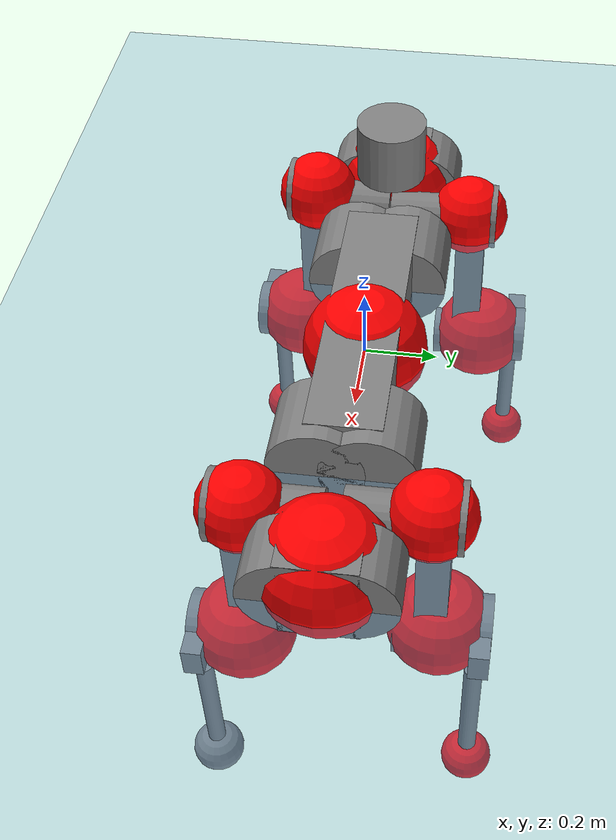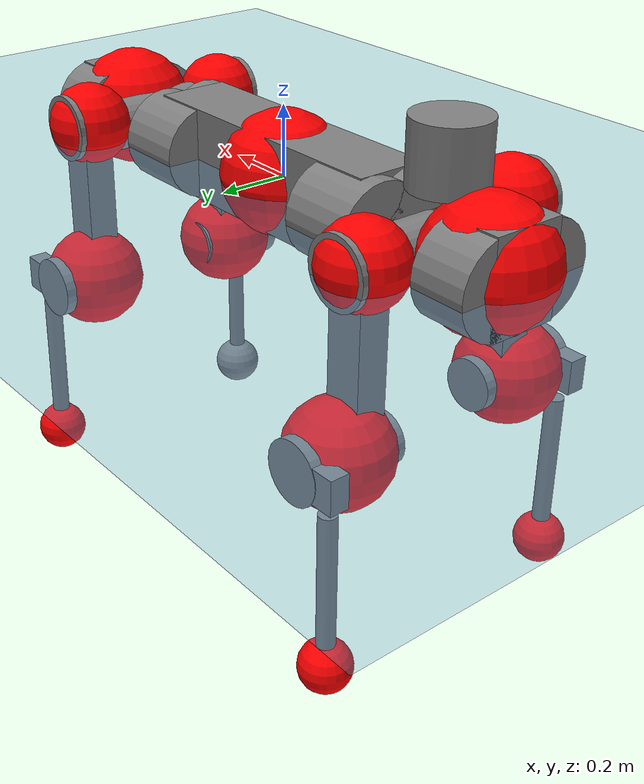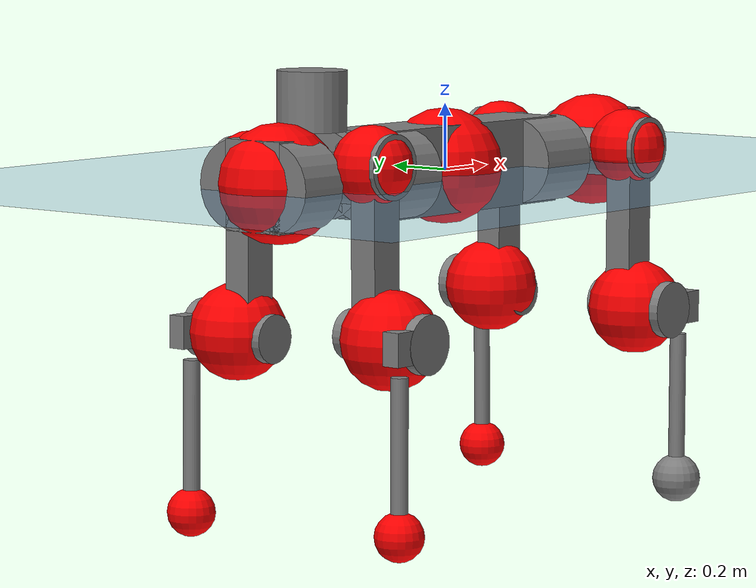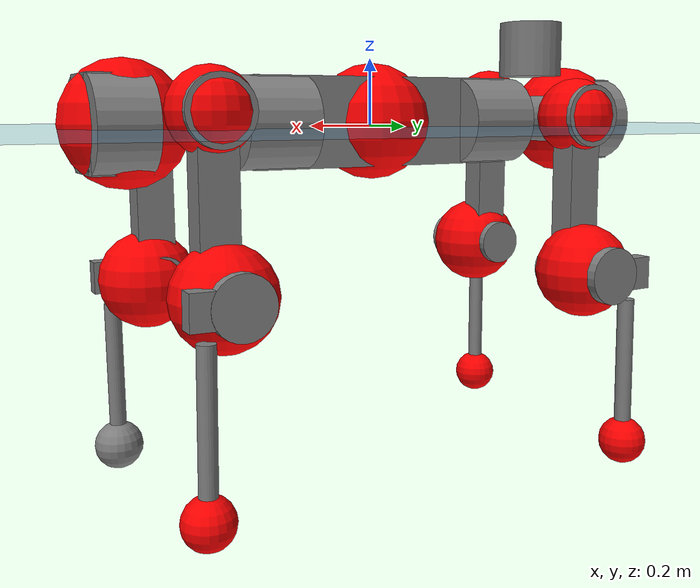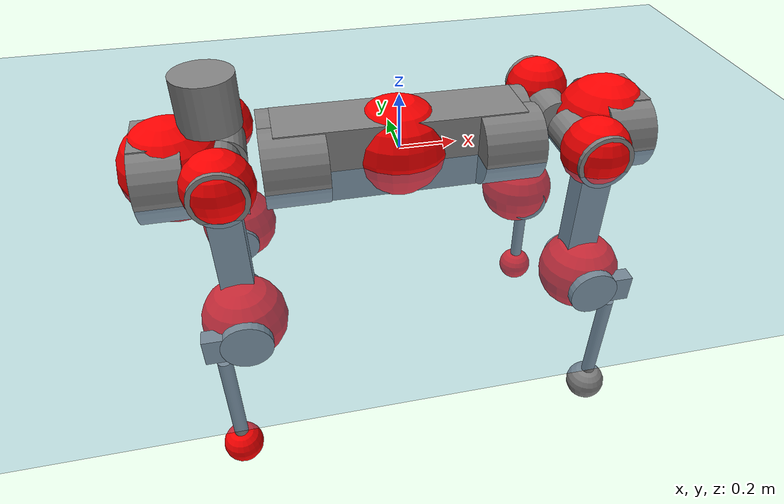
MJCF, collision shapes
<mujoco model="anymal_c">
  <compiler angle="radian" assetdir="assets" balanceinertia="true" inertiafromgeom="false"/>

  <option timestep="0.005" density="1.2" viscosity="2e-05"/>

  <size nkey="1"/>

  <visual>
    <quality shadowsize="8192"/>
    <map shadowclip="0.5"/>
  </visual>

  <default>
    <default class="/">
      <material specular="0" shininess="0.25"/>
      <geom contype="0" conaffinity="0" group="1" solref="-1000 -80"/>
      <site size="0.01 0.005 0.005" group="5"/>
      <general forcelimited="true" forcerange="-80 80" biastype="affine" gainprm="80" biasprm="0 -80 -2"/>
      <default class="anymal_c">
        <joint armature="0.01" damping="0.01" frictionloss="0.1"/>
        <default class="visual">
          <geom type="mesh" group="2"/>
          <default class="visual_zflip"/>
        </default>
        <default class="collision">
          <geom type="cylinder" group="3"/>
          <default class="foot">
            <geom size="0.03 0 0" type="sphere" condim="6" priority="1" friction="0.8 0.02 0.01" solimp="0.015 1 0.03"/>
          </default>
        </default>
      </default>
      <default class="reward_collision_sphere">
        <geom group="5" rgba="1 0 0 1"/>
      </default>
    </default>
  </default>

  <asset>
    <texture type="skybox" colorspace="auto" name="//unnamed_texture_0" builtin="gradient" rgb1="0.95 0.95 0.95" rgb2="0.95 0.95 0.95" width="100" height="600"/>
    <texture type="2d" colorspace="auto" name="texplane" builtin="checker" rgb1="0.345 0.575 0.748" rgb2="0.345 0.575 0.748" markrgb="1 1 1" width="512" height="512"/>
    <texture type="2d" colorspace="linear" name="base" file="base.png"/>
    <texture type="2d" colorspace="linear" name="top_shell" file="top_shell.png"/>
    <texture type="2d" colorspace="linear" name="bottom_shell" file="bottom_shell.png"/>
    <texture type="2d" colorspace="linear" name="remote" file="remote.png"/>
    <texture type="2d" colorspace="linear" name="hatch" file="hatch.png"/>
    <texture type="2d" colorspace="linear" name="handle" file="handle.png"/>
    <texture type="2d" colorspace="linear" name="face" file="face.png"/>
    <texture type="2d" colorspace="linear" name="battery" file="battery.png"/>
    <texture type="2d" colorspace="linear" name="lidar_cage" file="lidar_cage.png"/>
    <texture type="2d" colorspace="linear" name="depth_camera" file="depth_camera.png"/>
    <texture type="2d" colorspace="linear" name="wide_angle_camera" file="wide_angle_camera.png"/>
    <texture type="2d" colorspace="linear" name="lidar" file="lidar.png"/>
    <texture type="2d" colorspace="linear" name="drive" file="drive.png"/>
    <texture type="2d" colorspace="linear" name="hip_l" file="hip_l.png"/>
    <texture type="2d" colorspace="linear" name="shank_l" file="shank_l.png"/>
    <texture type="2d" colorspace="linear" name="foot" file="foot.png"/>
    <texture type="2d" colorspace="linear" name="thigh" file="thigh.png"/>
    <texture type="2d" colorspace="linear" name="shank_r" file="shank_r.png"/>
    <texture type="2d" colorspace="linear" name="hip_r" file="hip_r.png"/>
    <material name="MatPlane" class="/" texture="texplane" texuniform="true" texrepeat="2 2" specular="0.9" shininess="0.5"/>
    <material name="black_plastic" class="/" rgba="0.007 0.007 0.007 1"/>
    <material name="green" class="/" rgba="0.052 0.178 0.033 1"/>
    <material name="red" class="/" rgba="0.178 0.006 0.005 1"/>
    <material name="yellow" class="/" rgba="0.178 0.119 0.006 1"/>
    <material name="lwl" class="/" rgba="0.8 0.8 0.8 1"/>
    <material name="base" class="/" texture="base"/>
    <material name="top_shell" class="/" texture="top_shell"/>
    <material name="bottom_shell" class="/" texture="bottom_shell"/>
    <material name="hip_l" class="/" texture="hip_l"/>
    <material name="thigh" class="/" texture="thigh"/>
    <material name="shank_l" class="/" texture="shank_l"/>
    <material name="foot" class="/" texture="foot"/>
    <material name="hip_r" class="/" texture="hip_r"/>
    <material name="shank" class="/" texture="shank_r"/>
    <material name="hatch" class="/" texture="hatch"/>
    <material name="remote" class="/" texture="remote"/>
    <material name="handle" class="/" texture="handle"/>
    <material name="face" class="/" texture="face"/>
    <material name="depth_camera" class="/" texture="depth_camera"/>
    <material name="wide_angle_camera" class="/" texture="wide_angle_camera"/>
    <material name="battery" class="/" texture="battery"/>
    <material name="lidar_cage" class="/" texture="lidar_cage"/>
    <material name="lidar" class="/" texture="lidar"/>
    <material name="drive" class="/" texture="drive"/>
    <mesh name="base_0" class="/" file="base_0.obj"/>
    <mesh name="base_1" class="/" file="base_1.obj"/>
    <mesh name="base_2" class="/" file="base_2.obj"/>
    <mesh name="base_3" class="/" file="base_3.obj"/>
    <mesh name="base_4" class="/" file="base_4.obj"/>
    <mesh name="base_5" class="/" file="base_5.obj"/>
    <mesh name="top_shell" class="/" file="top_shell.obj"/>
    <mesh name="bottom_shell" class="/" file="bottom_shell.obj"/>
    <mesh name="remote" class="/" file="remote.obj"/>
    <mesh name="handle" class="/" file="handle.obj"/>
    <mesh name="face" class="/" file="face.obj"/>
    <mesh name="wide_angle_camera" class="/" file="wide_angle_camera.obj"/>
    <mesh name="depth_camera" class="/" file="depth_camera.obj"/>
    <mesh name="battery" class="/" file="battery.obj"/>
    <mesh name="lidar_cage" class="/" file="lidar_cage.obj"/>
    <mesh name="lidar" class="/" file="lidar.obj"/>
    <mesh name="drive" class="/" file="drive.obj"/>
    <mesh name="hip_l" class="/" file="hip_l.obj"/>
    <mesh name="thigh" class="/" file="thigh.obj"/>
    <mesh name="shank_l" class="/" file="shank_l.obj"/>
    <mesh name="foot" class="/" file="foot.obj"/>
    <mesh name="hip_r" class="/" file="hip_r.obj"/>
    <mesh name="hatch" class="/" file="hatch.obj"/>
    <mesh name="shank_r" class="/" file="shank_r.obj"/>
  </asset>

  <worldbody>
    <geom name="floor" class="/" size="100 100 0.125" type="plane" group="0" material="MatPlane"/>
    <light name="toplight_shadow" class="/" pos="0 0 5" dir="0.0990148 0.0990148 -0.990148" type="directional" ambient="0.04 0.04 0.04" diffuse="0.55 0.55 0.55" specular="0.12 0.12 0.12"/>
    <light name="toplight_fill" class="/" pos="0 0 5" dir="0.0990148 0.0990148 -0.990148" type="directional" castshadow="false" ambient="0.04 0.04 0.04" diffuse="0.3 0.3 0.3" specular="0.08 0.08 0.08"/>
    <body name="trunk" childclass="anymal_c" pos="-0.00444887 0.00102239 0.0129418" quat="0.999997 0.00135105 0.002027 -0.000119987">
      <inertial pos="0.0182296 0.0157057 0.0767952" quat="0.470258 0.529015 0.506934 0.491955" mass="58.1962" diaginertia="5.81291 0.447935 2.7961"/>
      <joint name="//unnamed_joint_0" type="free" armature="0" damping="0" frictionloss="0"/>
      <geom name="//unnamed_geom_1" class="visual" material="green" mesh="base_0"/>
      <geom name="//unnamed_geom_2" class="visual" material="yellow" mesh="base_1"/>
      <geom name="//unnamed_geom_3" class="visual" material="red" mesh="base_2"/>
      <geom name="//unnamed_geom_4" class="visual" material="black_plastic" mesh="base_3"/>
      <geom name="//unnamed_geom_5" class="visual" material="lwl" mesh="base_4"/>
      <geom name="//unnamed_geom_6" class="visual" material="base" mesh="base_5"/>
      <geom name="trunk_1" class="collision" size="0.422337 0.101943 0.13107" type="box"/>
      <geom name="trunk_2" class="collision" size="0.13107 0.105584" pos="0.362984 0.0684687 0" quat="0.707107 0 0.707107 0"/>
      <geom name="trunk_3" class="collision" size="0.13107 0.105584" pos="-0.362984 0.0684687 0" quat="0.707107 0 0.707107 0"/>
      <geom name="trunk_4" class="collision" size="0.13107 0.105584" pos="0.362984 -0.0684687 0" quat="0.707107 0 0.707107 0"/>
      <geom name="trunk_5" class="collision" size="0.13107 0.105584" pos="-0.362984 -0.0684687 0" quat="0.707107 0 0.707107 0"/>
      <geom name="//unnamed_geom_12" class="visual" material="top_shell" mesh="top_shell"/>
      <geom name="//unnamed_geom_13" class="visual" material="bottom_shell" mesh="bottom_shell"/>
      <geom name="//unnamed_geom_14" class="visual" material="remote" mesh="remote"/>
      <geom name="//unnamed_geom_15" class="visual" material="handle" mesh="handle"/>
      <geom name="//unnamed_geom_16" class="visual" pos="0.691755 0 0" quat="1 0 0 0" material="face" mesh="face"/>
      <geom name="trunk_6" class="collision" size="0.0800984 0.101943 0.13107" pos="0.783544 0 0" type="box"/>
      <geom name="//unnamed_geom_18" class="collision" size="0.13107 0.0800984" pos="0.783544 0.0684687 0" quat="0.707107 0 0.707107 0"/>
      <geom name="//unnamed_geom_19" class="collision" size="0.13107 0.0800984" pos="0.783544 -0.0684687 0" quat="0.707107 0 0.707107 0"/>
      <geom name="//unnamed_geom_20" class="visual" pos="0.770445 0 -0.0506857" quat="0.965926 0 0.258819 0" material="depth_camera" mesh="depth_camera"/>
      <geom name="//unnamed_geom_21" class="visual" pos="0.856141 0 0.0257782" material="wide_angle_camera" mesh="wide_angle_camera"/>
      <geom name="//unnamed_geom_22" class="visual_zflip" pos="-0.691755 0 0" quat="0 0 0 1" material="face" mesh="face"/>
      <geom name="trunk_7" class="collision" size="0.0800984 0.101943 0.13107" pos="-0.783544 0 0" quat="0 0 0 1" type="box"/>
      <geom name="//unnamed_geom_24" class="collision" size="0.13107 0.0800984" pos="-0.783544 -0.0684687 0" quat="0 -0.707107 0 0.707107"/>
      <geom name="//unnamed_geom_25" class="collision" size="0.13107 0.0800984" pos="-0.783544 0.0684687 0" quat="0 -0.707107 0 0.707107"/>
      <geom name="//unnamed_geom_26" class="visual" pos="-0.770445 0 -0.0506857" quat="0 -0.258819 0 0.965926" material="depth_camera" mesh="depth_camera"/>
      <geom name="//unnamed_geom_27" class="visual_zflip" pos="-0.856141 0 0.0257782" quat="0 0 0 1" material="wide_angle_camera" mesh="wide_angle_camera"/>
      <geom name="//unnamed_geom_28" class="visual" material="battery" mesh="battery"/>
      <geom name="//unnamed_geom_29" class="visual" pos="0 0.0657253 0.0496203" quat="0.683013 -0.183013 0.183013 0.683013" material="depth_camera" mesh="depth_camera"/>
      <geom name="//unnamed_geom_30" class="visual" pos="0 -0.0657253 0.0496203" quat="0.683013 0.183013 0.183013 -0.683013" material="depth_camera" mesh="depth_camera"/>
      <geom name="//unnamed_geom_31" class="visual" pos="-0.607476 0 0.126566" quat="1 0 0 0" material="lidar_cage" mesh="lidar_cage"/>
      <geom name="trunk_8" class="collision" size="0.101943 0.0873801" pos="-0.607476 0 0.229886"/>
      <geom name="//unnamed_geom_33" class="visual" pos="-0.607476 -0.000271383 0.244867" quat="0.707107 0 0 -0.707107" material="lidar" mesh="lidar"/>
      <geom name="//unnamed_geom_34" class="visual" pos="0.5005 0.101989 -1.28318e-08" quat="0.258819 0.965926 0 0" material="drive" mesh="drive"/>
      <geom name="//unnamed_geom_35" class="visual" pos="0.5005 -0.101989 1.28318e-08" quat="0.258819 -0.965926 0 0" material="drive" mesh="drive"/>
      <geom name="//unnamed_geom_36" class="visual" pos="-0.5005 0.101989 1.28318e-08" quat="0 0 0.965926 -0.258819" material="drive" mesh="drive"/>
      <geom name="//unnamed_geom_37" class="visual" pos="-0.5005 -0.101989 -1.28318e-08" quat="0 0 -0.965926 -0.258819" material="drive" mesh="drive"/>
      <geom name="//unnamed_geom_38" class="visual" pos="0.193591 0 0.125705" quat="1 0 0 0" material="hatch" mesh="hatch"/>
      <geom name="//unnamed_geom_39" class="reward_collision_sphere" size="0.17476"/>
      <geom name="//unnamed_geom_40" class="reward_collision_sphere" size="0.17476" pos="0.751001 0 0"/>
      <geom name="//unnamed_geom_41" class="reward_collision_sphere" size="0.17476" pos="-0.751001 0 0"/>
      <site name="imu" pos="0.504234 0.0351087 0.0016202" size="0.0145633"/>
      <camera name="track" pos="0 -1.95625 0" quat="0.707107 0.707107 0 0" mode="trackcom"/>
      <camera name="ego_camera" pos="0.751001 0 -0.0688796" quat="-0.5 -0.5 0.5 0.5"/>
      <body name="LF_HIP" pos="0.495156 0.110648 0.0028011" quat="0.257555 0.966251 -0.00061628 0.00498072">
        <inertial pos="0.0787091 -0.00445033 -0.0104177" quat="-0.083987 0.713859 -0.172992 0.673369" mass="10.7503" diaginertia="0.0952987 0.00471576 0.0465041"/>
        <joint name="LF_HAA" pos="0 0 0" axis="0.997656 -0.0489131 0.0478603" stiffness="0.038957" range="-0.639601 0.265563" armature="0.00215953" damping="0.0869952" frictionloss="0.190222"/>
        <geom name="//unnamed_geom_42" class="visual" pos="0 -0.000754835 0.000123981" quat="0.258819 -0.965926 0 0" material="hip_l" mesh="hip_l"/>
        <geom name="//unnamed_geom_43" class="visual" pos="0.0999665 -0.1123 -0.0703385" quat="0.183013 -0.683013 0.683013 0.183013" material="drive" mesh="drive"/>
        <geom name="//unnamed_geom_44" class="collision" size="0.0728167 0.101943" pos="0.0999665 -0.0116982 -0.0118903" quat="-0.353553 -0.612372 0.612372 -0.353553"/>
        <body name="LF_THIGH" pos="0.0999798 -0.0668022 -0.0717658" quat="0.183024 -0.683473 0.683086 0.181">
          <inertial pos="0.0419265 -0.000718782 -0.439229" quat="0.990755 -0.0354335 -0.103255 0.0805402" mass="7.67773" diaginertia="0.447684 0.0256589 0.0647808"/>
          <joint name="LF_HFE" pos="0 0 0" axis="0.996173 -0.0846279 0.021845" range="-2.99579 3.01579" armature="0.0105708" damping="0.0453207" frictionloss="0.259329"/>
          <geom name="//unnamed_geom_45" class="visual" pos="0.0137435 2.16566e-05 0" quat="0.707107 0 0 -0.707107" material="thigh" mesh="thigh"/>
          <geom name="//unnamed_geom_46" class="collision" size="0.0946618 0.0582534" pos="0.0667556 0 0" quat="0.5 0.5 -0.5 -0.5"/>
          <geom name="//unnamed_geom_47" class="collision" size="0.0546126 0.04369 0.205801" pos="0.0500667 0 -0.243341" quat="0.707107 0 0 -0.707107" type="box"/>
          <geom name="//unnamed_geom_48" class="visual" pos="0.16739 0 -0.490767" quat="1 0 0 0" material="drive" mesh="drive"/>
          <geom name="//unnamed_geom_49" class="collision" size="0.0728167 0.101943" pos="0.0505674 0 -0.490767" quat="0.707107 0 0.707107 0"/>
          <geom name="//unnamed_geom_50" class="reward_collision_sphere" size="0.116507" pos="0.0417223 0 0"/>
          <body name="LF_SHANK" pos="0.152909 0.0148762 -0.472978" quat="0.999974 -0.00627594 -0.0023424 0.0027254">
            <inertial pos="0.016119 -0.0598438 -0.131709" quat="0.996519 -0.0827077 0.000110818 -0.0104729" mass="2.15587" diaginertia="0.149875 0.0082015 0.0209094"/>
            <joint name="LF_KFE" pos="0 0 0" axis="0.998968 -0.0447297 0.00790628" stiffness="0.0143755" range="-2.88974 2.95705" armature="0.00727281" damping="0.0791" frictionloss="0.0572616"/>
            <geom name="//unnamed_geom_51" class="visual" pos="0.00448146 0.0238954 0" quat="0.707107 0 0 -0.707107" material="shank_l" mesh="shank_l"/>
            <geom name="LF_kfe_act" class="collision" size="0.0873801 0.0291267" pos="0.0333778 0 0" quat="0.5 0.5 -0.5 -0.5"/>
            <geom name="//unnamed_geom_53" class="collision" size="0.0837378 0.0491513 0.0276704" pos="0.0333778 -0.0562412 0" quat="0.5 0.5 -0.5 -0.5" type="box"/>
            <geom name="//unnamed_geom_54" class="visual" pos="0.0217779 -0.0783255 -0.581981" quat="0.382683 0 0 -0.92388" material="foot" mesh="foot"/>
            <geom name="LF_calf" class="collision" size="0.0254859 0.20571" pos="0.021779 -0.086026 -0.290991" quat="0.707107 0 0 -0.707107"/>
            <geom name="LF_foot" class="foot" size="0.0535591" pos="0.021779 -0.086026 -0.543236" quat="0.707107 0 0 -0.707107"/>
            <geom name="//unnamed_geom_57" class="reward_collision_sphere" size="0.145633" pos="-0.0834445 0 0"/>
            <geom name="//unnamed_geom_58" class="reward_collision_sphere" size="0.0728167" pos="0.021779 -0.086026 -0.543236"/>
            <site name="LF_foot" class="foot" pos="0.021779 -0.086026 -0.543236" quat="0.707107 0 0 -0.707107" size="0.0145633"/>
          </body>
        </body>
      </body>
      <body name="RF_HIP" pos="0.512827 -0.106573 0.0043566" quat="0.258621 -0.965978 -0.000155982 0.0011648">
        <inertial pos="0.0792585 0.019752 -0.0184754" quat="0.135104 0.681632 0.138754 0.705601" mass="7.95578" diaginertia="0.0723751 0.00321153 0.0420188"/>
        <joint name="RF_HAA" pos="0 0 0" axis="0.999022 0.0421437 0.0133484" stiffness="0.0414495" range="-0.168797 0.605121" armature="0.0251687" damping="0.0188336" frictionloss="0.260283"/>
        <geom name="//unnamed_geom_59" class="visual" pos="0 0.000754829 0.000123981" quat="0.258819 0.965926 0 0" material="hip_r" mesh="hip_r"/>
        <geom name="//unnamed_geom_60" class="visual" pos="0.0999665 0.1123 -0.0703385" quat="0.183013 0.683013 0.683013 -0.183013" material="drive" mesh="drive"/>
        <geom name="//unnamed_geom_61" class="collision" size="0.0728167 0.101943" pos="0.0999665 0.0116982 -0.0118903" quat="-0.353553 0.612372 0.612372 0.353553"/>
        <body name="RF_THIGH" pos="0.109797 0.0544837 -0.0615822" quat="0.1804 0.684381 0.682203 -0.183515">
          <inertial pos="0.0503987 -0.00553522 -0.418723" quat="0.980723 -0.0110853 -0.13035 0.145149" mass="13.4546" diaginertia="0.433506 0.0266248 0.0649104"/>
          <joint name="RF_HFE" pos="0 0 0" axis="0.99753 -0.0330425 0.061984" stiffness="0.0130511" range="-3.49213 2.88948" armature="0.0139944" damping="0.0845046" frictionloss="0.00858116"/>
          <geom name="//unnamed_geom_62" class="visual" pos="0.0137435 2.16566e-05 0" quat="0.707107 0 0 -0.707107" material="thigh" mesh="thigh"/>
          <geom name="//unnamed_geom_63" class="collision" size="0.0946618 0.0582534" pos="0.0667556 0 0" quat="0.5 0.5 0.5 0.5"/>
          <geom name="//unnamed_geom_64" class="collision" size="0.0546126 0.04369 0.205801" pos="0.0500667 0 -0.243341" quat="0.707107 0 0 0.707107" type="box"/>
          <geom name="//unnamed_geom_65" class="visual" pos="0.16739 0 -0.490767" quat="1 0 0 0" material="drive" mesh="drive"/>
          <geom name="//unnamed_geom_66" class="collision" size="0.0728167 0.101943" pos="0.0505674 0 -0.490767" quat="0.707107 0 0.707107 0"/>
          <geom name="//unnamed_geom_67" class="reward_collision_sphere" size="0.116507" pos="0.0417223 0 0"/>
          <body name="RF_SHANK" pos="0.151785 0.016593 -0.500109" quat="0.999998 -0.00136918 -0.00134881 -0.000797699">
            <inertial pos="0.0108459 0.0635975 -0.15536" quat="0.993562 0.0869148 0.0227793 0.0690015" mass="1.96373" diaginertia="0.161883 0.00984916 0.0163143"/>
            <joint name="RF_KFE" pos="0 0 0" axis="0.99981 -0.00886433 -0.017383" range="-2.90708 2.89623" armature="0.0205379" damping="0" frictionloss="0.270693"/>
            <geom name="//unnamed_geom_68" class="visual" pos="0.00448144 -0.0238953 0" quat="0.707107 0 0 0.707107" material="shank" mesh="shank_r"/>
            <geom name="RF_kfe_act" class="collision" size="0.0873801 0.0291267" pos="0.0333778 0 0" quat="0.5 0.5 0.5 0.5"/>
            <geom name="//unnamed_geom_70" class="collision" size="0.0837378 0.0491513 0.0276704" pos="0.0333778 0.0562412 0" quat="0.5 0.5 0.5 0.5" type="box"/>
            <geom name="//unnamed_geom_71" class="visual" pos="0.0217801 0.0783255 -0.581981" quat="0.382683 0 0 0.92388" material="foot" mesh="foot"/>
            <geom name="RF_calf" class="collision" size="0.0254859 0.20571" pos="0.021779 0.086026 -0.290991" quat="0.707107 0 0 0.707107"/>
            <geom name="RF_foot" class="foot" size="0.0747152" pos="0.021779 0.086026 -0.543236" quat="0.707107 0 0 0.707107"/>
            <geom name="//unnamed_geom_74" class="reward_collision_sphere" size="0.145633" pos="-0.0834445 0 0"/>
            <geom name="//unnamed_geom_75" class="reward_collision_sphere" size="0.0728167" pos="0.021779 0.086026 -0.543236"/>
            <site name="RF_foot" class="foot" pos="0.021779 0.086026 -0.543236" quat="0.707107 0 0 0.707107" size="0.0145633"/>
          </body>
        </body>
      </body>
      <body name="LH_HIP" pos="-0.482974 0.0920079 0.000415401" quat="0.000467654 -0.00203447 0.966761 -0.255675">
        <inertial pos="0.0847374 -0.00116439 -0.0179569" quat="0.19347 0.668251 0.127492 0.706934" mass="8.46606" diaginertia="0.0998302 0.0041025 0.0707702"/>
        <joint name="LH_HAA" pos="0 0 0" axis="0.999055 0.0141387 -0.04111" stiffness="0.0429462" range="-0.66939 1.0963" armature="0.0269474" damping="0.0727311" frictionloss="0.170167"/>
        <geom name="//unnamed_geom_76" class="visual" pos="0 0.000754829 0.000123981" quat="-0.258819 -0.965926 0 0" material="hip_r" mesh="hip_r"/>
        <geom name="//unnamed_geom_77" class="visual" pos="0.0999665 0.1123 -0.0703385" quat="0.183013 0.683013 0.683013 -0.183013" material="drive" mesh="drive"/>
        <geom name="//unnamed_geom_78" class="collision" size="0.0728167 0.101943" pos="0.0999665 0.0116982 -0.0118903" quat="-0.353553 0.612372 0.612372 0.353553"/>
        <body name="LH_THIGH" pos="0.112225 0.0894955 -0.0649321" quat="0.183015 0.683022 0.683025 -0.182933">
          <inertial pos="0.0516667 -0.0144608 -0.417383" quat="0.99473 0.00119149 -0.0757088 0.0691274" mass="9.60436" diaginertia="0.394441 0.0307479 0.0571128"/>
          <joint name="LH_HFE" pos="0 0 0" axis="0.997238 0.0742449 0.00199681" range="-3.18644 3.2342" armature="0.022295" damping="0.0591685" frictionloss="0.0824528"/>
          <geom name="//unnamed_geom_79" class="visual" pos="0.0137435 2.16566e-05 0" quat="0.707107 0 0 -0.707107" material="thigh" mesh="thigh"/>
          <geom name="//unnamed_geom_80" class="collision" size="0.0946618 0.0582534" pos="0.0667556 0 0" quat="0.5 0.5 -0.5 -0.5"/>
          <geom name="//unnamed_geom_81" class="collision" size="0.0546126 0.04369 0.205801" pos="0.0500667 0 -0.243341" quat="0.707107 0 0 -0.707107" type="box"/>
          <geom name="//unnamed_geom_82" class="visual" pos="0.16739 0 -0.490767" quat="1 0 0 0" material="drive" mesh="drive"/>
          <geom name="//unnamed_geom_83" class="collision" size="0.0728167 0.101943" pos="0.0505674 0 -0.490767" quat="0.707107 0 0.707107 0"/>
          <geom name="//unnamed_geom_84" class="reward_collision_sphere" size="0.116507" pos="0.0417223 0 0"/>
          <body name="LH_SHANK" pos="0.179779 -0.00332856 -0.481739" quat="0.999989 0.00359077 0.000801511 0.00284041">
            <inertial pos="0.00960974 0.060926 -0.135997" quat="0.984742 0.161797 -0.0521651 -0.0371976" mass="1.79359" diaginertia="0.122292 0.00757375 0.0202767"/>
            <joint name="LH_KFE" pos="0 0 0" axis="0.997678 0.0681008 -0.00109894" range="-3.12419 3.13495" armature="0.023968" damping="0.0315854" frictionloss="0.0551977"/>
            <geom name="//unnamed_geom_85" class="visual" pos="0.00448144 -0.0238953 0" quat="-0.707107 0 0 -0.707107" material="shank" mesh="shank_r"/>
            <geom name="LH_kfe_act" class="collision" size="0.0873801 0.0291267" pos="0.0333778 0 0" quat="0.5 0.5 -0.5 -0.5"/>
            <geom name="//unnamed_geom_87" class="collision" size="0.0837378 0.0491513 0.0276704" pos="0.0333778 0.0562412 0" quat="0.5 0.5 -0.5 -0.5" type="box"/>
            <geom name="//unnamed_geom_88" class="visual" pos="0.0217801 0.0783255 -0.581981" quat="-0.382683 0 0 -0.92388" material="foot" mesh="foot"/>
            <geom name="LH_calf" class="collision" size="0.0254859 0.20571" pos="0.021779 0.086026 -0.290991" quat="0.707107 0 0 -0.707107"/>
            <geom name="LH_foot" class="foot" size="0.0138442" pos="0.021779 0.086026 -0.543236" quat="0.707107 0 0 -0.707107"/>
            <geom name="//unnamed_geom_91" class="reward_collision_sphere" size="0.145633" pos="-0.0834445 0 0"/>
            <geom name="//unnamed_geom_92" class="reward_collision_sphere" size="0.0728167" pos="0.021779 0.086026 -0.543236"/>
            <site name="LH_foot" class="foot" pos="0.021779 0.086026 -0.543236" quat="0.707107 0 0 -0.707107" size="0.0145633"/>
          </body>
        </body>
      </body>
      <body name="RH_HIP" pos="-0.504114 -0.0855311 0.00994013" quat="-0.00568795 -0.00362478 -0.965426 -0.26059">
        <inertial pos="0.110955 -0.0124048 -0.0295495" quat="-0.123194 0.73213 -0.111827 0.660533" mass="9.60302" diaginertia="0.0838819 0.00504643 0.0685557"/>
        <joint name="RH_HAA" pos="0 0 0" axis="0.999921 0.0123151 -0.00238151" stiffness="0.0522978" range="-0.422078 0.139189" armature="0.0165217" damping="0.0677249" frictionloss="0.134585"/>
        <geom name="//unnamed_geom_93" class="visual" pos="0 -0.000754835 0.000123981" quat="-0.258819 0.965926 0 0" material="hip_l" mesh="hip_l"/>
        <geom name="//unnamed_geom_94" class="visual" pos="0.0999665 -0.1123 -0.0703385" quat="-0.183013 0.683013 -0.683013 -0.183013" material="drive" mesh="drive"/>
        <geom name="//unnamed_geom_95" class="collision" size="0.0728167 0.101943" pos="0.0999665 -0.0116982 -0.0118903" quat="0.353553 0.612372 -0.612372 0.353553"/>
        <body name="RH_THIGH" pos="0.0961428 -0.060625 -0.0884995" quat="-0.184959 0.683098 -0.68226 -0.183543">
          <inertial pos="0.0382851 0.00680121 -0.429181" quat="0.992881 -0.0087681 -0.0835431 0.0844498" mass="14.1917" diaginertia="0.572581 0.0315928 0.0713754"/>
          <joint name="RH_HFE" pos="0 0 0" axis="0.99734 0.0724838 -0.00771644" stiffness="0.00520552" range="-3.21527 3.12106" armature="0.0213691" damping="0.0555759" frictionloss="0.133124"/>
          <geom name="//unnamed_geom_96" class="visual" pos="0.0137435 2.16566e-05 0" quat="0.707107 0 0 -0.707107" material="thigh" mesh="thigh"/>
          <geom name="//unnamed_geom_97" class="collision" size="0.0946618 0.0582534" pos="0.0667556 0 0" quat="0.5 0.5 0.5 0.5"/>
          <geom name="//unnamed_geom_98" class="collision" size="0.0546126 0.04369 0.205801" pos="0.0500667 0 -0.243341" quat="0.707107 0 0 0.707107" type="box"/>
          <geom name="//unnamed_geom_99" class="visual" pos="0.16739 0 -0.490767" quat="1 0 0 0" material="drive" mesh="drive"/>
          <geom name="//unnamed_geom_100" class="collision" size="0.0728167 0.101943" pos="0.0505674 0 -0.490767" quat="0.707107 0 0.707107 0"/>
          <geom name="//unnamed_geom_101" class="reward_collision_sphere" size="0.116507" pos="0.0417223 0 0"/>
          <body name="RH_SHANK" pos="0.183393 0.00672505 -0.496679" quat="0.999986 -0.00345353 0.000196318 0.00390275">
            <inertial pos="0.018327 -0.0604873 -0.142708" quat="0.98614 -0.135426 -0.0305507 -0.0908553" mass="1.61415" diaginertia="0.142233 0.00639585 0.01539"/>
            <joint name="RH_KFE" pos="0 0 0" axis="0.999996 -0.00226594 0.00143653" range="-3.01219 3.30274" armature="0.0270382" damping="0" frictionloss="0.140182"/>
            <geom name="//unnamed_geom_102" class="visual" pos="0.00448146 0.0238954 0" quat="0.707107 0 0 -0.707107" material="shank_l" mesh="shank_l"/>
            <geom name="RH_kfe_act" class="collision" size="0.0873801 0.0291267" pos="0.0333778 0 0" quat="0.5 0.5 0.5 0.5"/>
            <geom name="//unnamed_geom_104" class="collision" size="0.0837378 0.0491513 0.0276704" pos="0.0333778 -0.0562412 0" quat="0.5 0.5 0.5 0.5" type="box"/>
            <geom name="//unnamed_geom_105" class="visual" pos="0.0217779 -0.0783255 -0.581981" quat="0.382683 0 0 -0.92388" material="foot" mesh="foot"/>
            <geom name="RH_calf" class="collision" size="0.0254859 0.20571" pos="0.021779 -0.086026 -0.290991" quat="0.707107 0 0 0.707107"/>
            <geom name="RH_foot" class="foot" size="0.0643023" pos="0.021779 -0.086026 -0.543236" quat="0.707107 0 0 0.707107"/>
            <geom name="//unnamed_geom_108" class="reward_collision_sphere" size="0.145633" pos="-0.0834445 0 0"/>
            <geom name="//unnamed_geom_109" class="reward_collision_sphere" size="0.0728167" pos="0.021779 -0.086026 -0.543236"/>
            <site name="RH_foot" class="foot" pos="0.021779 -0.086026 -0.543236" quat="0.707107 0 0 0.707107" size="0.0145633"/>
          </body>
        </body>
      </body>
    </body>
  </worldbody>

  <contact>
    <pair class="/" geom1="floor" geom2="LF_foot" name="//unnamed_contact_0"/>
    <pair class="/" geom1="floor" geom2="RF_foot" name="//unnamed_contact_1"/>
    <pair class="/" geom1="floor" geom2="LH_foot" name="//unnamed_contact_2"/>
    <pair class="/" geom1="floor" geom2="RH_foot" name="//unnamed_contact_3"/>
  </contact>

  <actuator>
    <general name="LF_HAA" class="/" joint="LF_HAA" forcerange="-141.997 141.997" gainprm="91.4653" biasprm="0 -91.4653 -3.55561"/>
    <general name="LF_HFE" class="/" joint="LF_HFE" forcerange="-166.379 166.379" gainprm="91.4653" biasprm="0 -91.4653 -3.55561"/>
    <general name="LF_KFE" class="/" joint="LF_KFE" forcerange="-148.306 148.306" gainprm="91.4653" biasprm="0 -91.4653 -3.55561"/>
    <general name="RF_HAA" class="/" joint="RF_HAA" forcerange="-168.919 168.919" gainprm="91.4653" biasprm="0 -91.4653 -3.55561"/>
    <general name="RF_HFE" class="/" joint="RF_HFE" forcerange="-72.6152 72.6152" gainprm="91.4653" biasprm="0 -91.4653 -3.55561"/>
    <general name="RF_KFE" class="/" joint="RF_KFE" forcerange="-183.83 183.83" gainprm="91.4653" biasprm="0 -91.4653 -3.55561"/>
    <general name="LH_HAA" class="/" joint="LH_HAA" forcerange="-121.532 121.532" gainprm="91.4653" biasprm="0 -91.4653 -3.55561"/>
    <general name="LH_HFE" class="/" joint="LH_HFE" forcerange="-184.76 184.76" gainprm="91.4653" biasprm="0 -91.4653 -3.55561"/>
    <general name="LH_KFE" class="/" joint="LH_KFE" forcerange="-146.855 146.855" gainprm="91.4653" biasprm="0 -91.4653 -3.55561"/>
    <general name="RH_HAA" class="/" joint="RH_HAA" forcerange="-153.046 153.046" gainprm="91.4653" biasprm="0 -91.4653 -3.55561"/>
    <general name="RH_HFE" class="/" joint="RH_HFE" forcerange="-190.95 190.95" gainprm="91.4653" biasprm="0 -91.4653 -3.55561"/>
    <general name="RH_KFE" class="/" joint="RH_KFE" forcerange="-51.9804 51.9804" gainprm="91.4653" biasprm="0 -91.4653 -3.55561"/>
  </actuator>

  <sensor>
    <gyro site="imu" name="imu_angular_velocity"/>
    <velocimeter site="imu" name="imu_linear_velocity"/>
    <framelinvel objtype="site" objname="LF_foot" name="LF_foot_global_linear_velocity"/>
    <framelinvel objtype="site" objname="RF_foot" name="RF_foot_global_linear_velocity"/>
    <framelinvel objtype="site" objname="LH_foot" name="LH_foot_global_linear_velocity"/>
    <framelinvel objtype="site" objname="RH_foot" name="RH_foot_global_linear_velocity"/>
  </sensor>

  <keyframe>
    <key name="home" qpos="0 0 0.55 1 0 0 0 0 0.4 -0.8 0 -0.4 0.8 0 -0.4 0.8 0 0.4 -0.8"/>
  </keyframe>
</mujoco>
